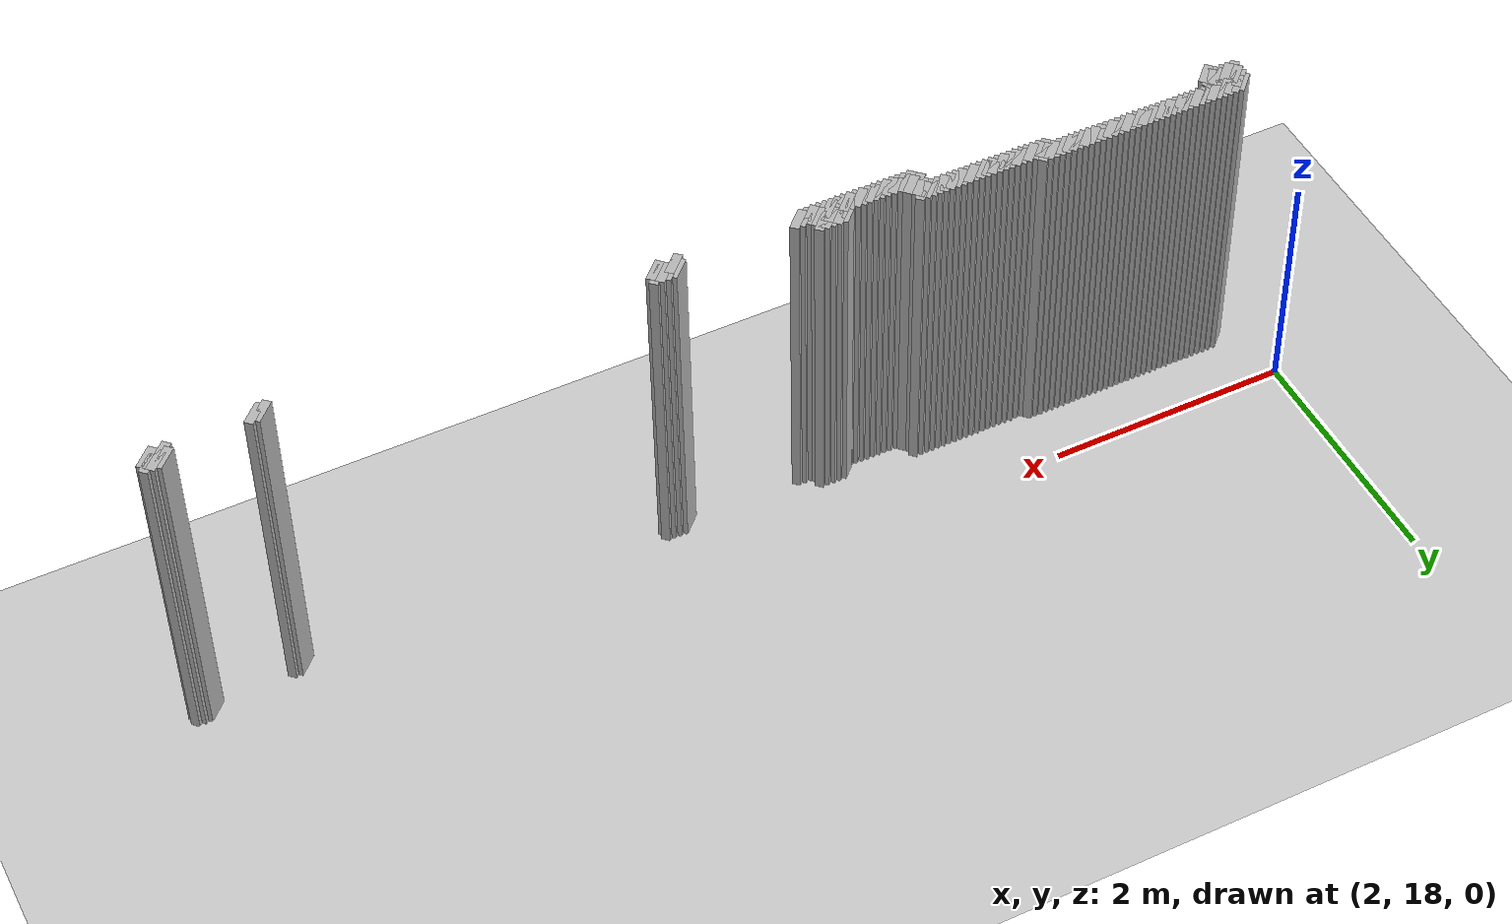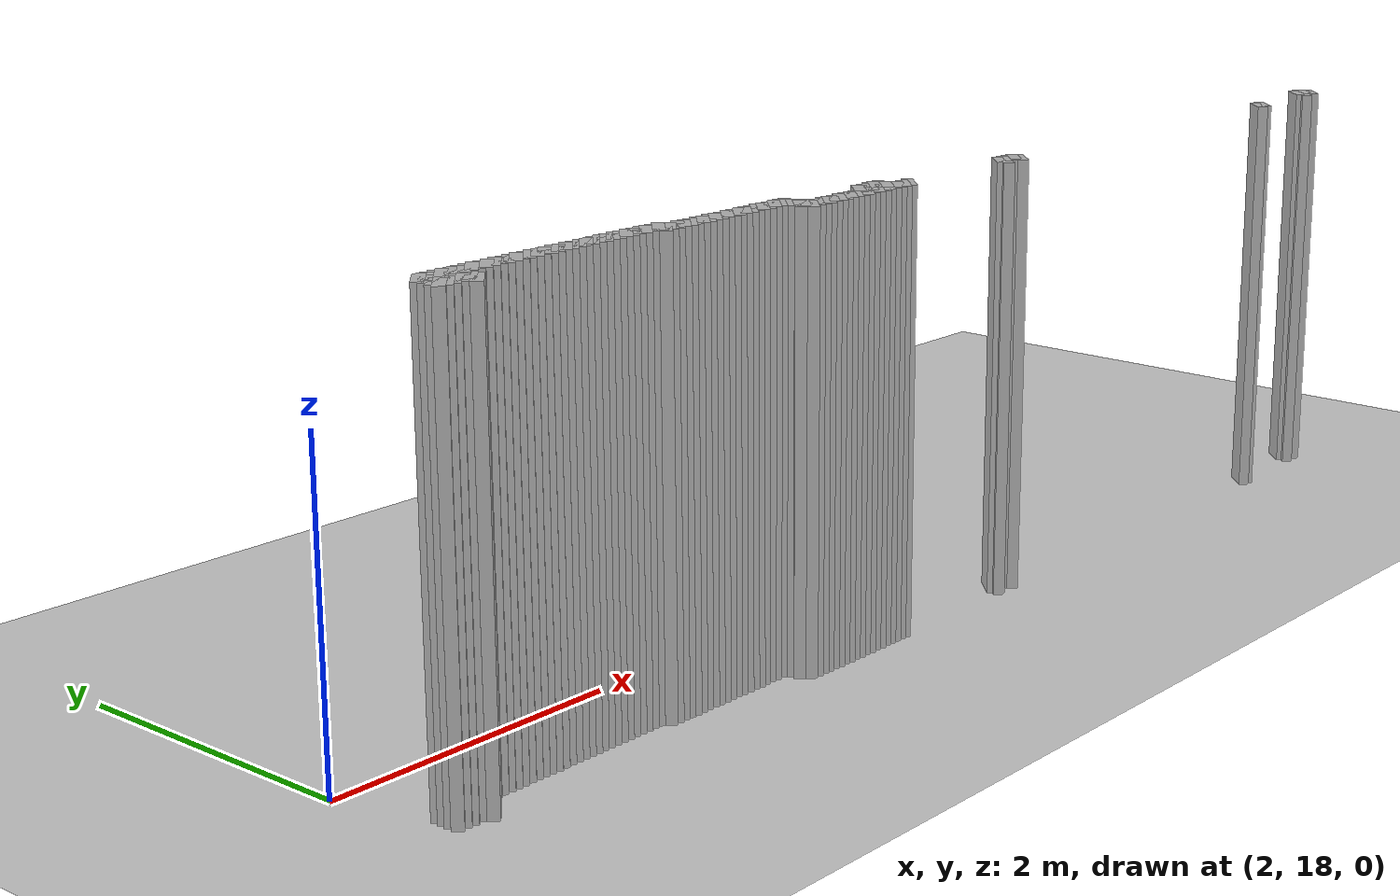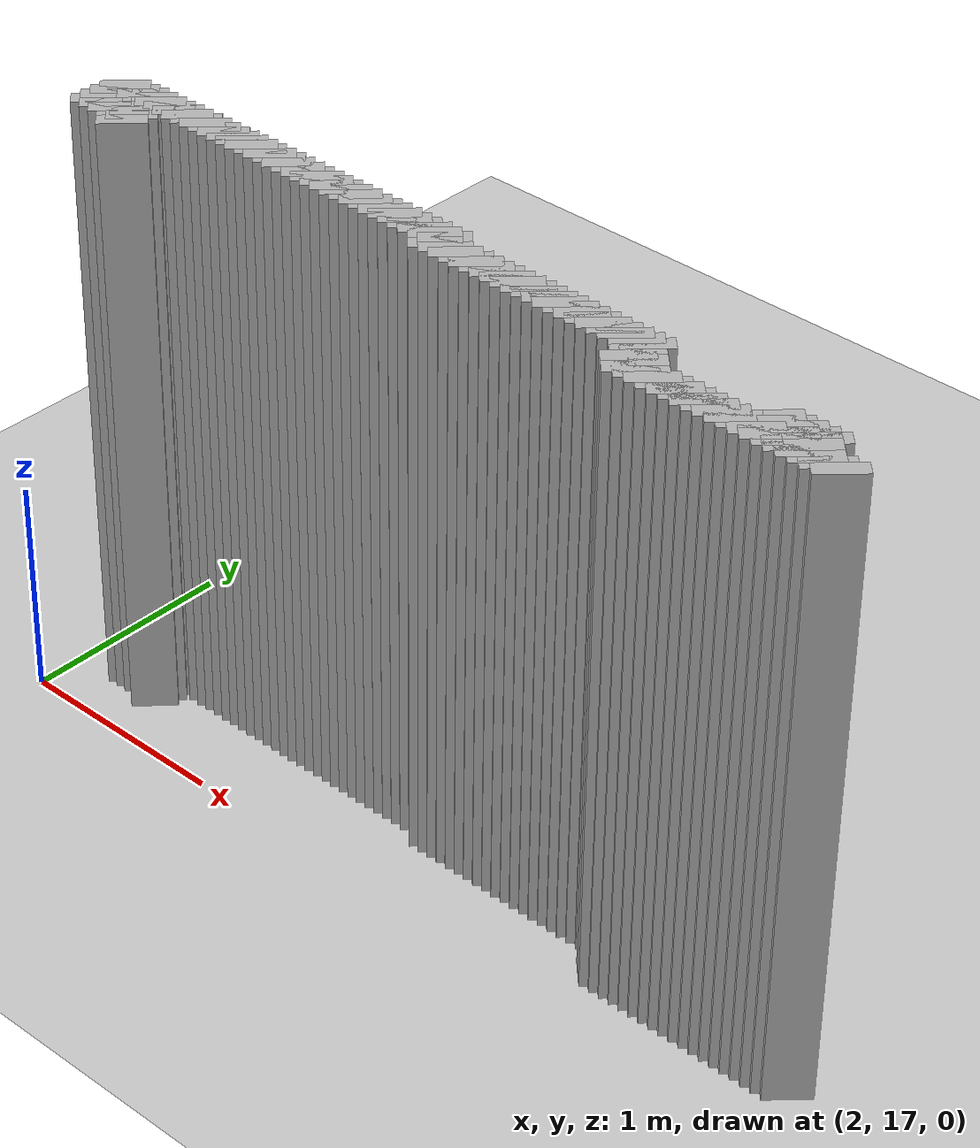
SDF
<sdf version="1.5">
 <world name="default">
  <include><uri>model://ground_plane</uri></include>
  <include><uri>model://sun</uri></include>
  <model name="grey_wall_1">
   <static>1</static>
   <link name="link">
    <pose>2.25 17.45  1.4 0 0 -0.7853981633974216</pose>
    <collision name="collision">
     <geometry><box><size>0.07071067811865261 .2  2.8</size></box></geometry>
    </collision>
    <visual name="visual">
     <cast_shadows>0</cast_shadows>
     <geometry><box><size>0.07071067811865261 .2  2.8</size></box></geometry>
    </visual>
   </link>
  </model>
  <model name="grey_wall_2">
   <static>1</static>
   <link name="link">
    <pose>2.3000000000000003 17.45  1.4 0 0 -0.7853981633974216</pose>
    <collision name="collision">
     <geometry><box><size>0.07071067811865261 .2  2.8</size></box></geometry>
    </collision>
    <visual name="visual">
     <cast_shadows>0</cast_shadows>
     <geometry><box><size>0.07071067811865261 .2  2.8</size></box></geometry>
    </visual>
   </link>
  </model>
  <model name="grey_wall_3">
   <static>1</static>
   <link name="link">
    <pose>2.35 17.45  1.4 0 0 -0.7853981633974216</pose>
    <collision name="collision">
     <geometry><box><size>0.07071067811865261 .2  2.8</size></box></geometry>
    </collision>
    <visual name="visual">
     <cast_shadows>0</cast_shadows>
     <geometry><box><size>0.07071067811865261 .2  2.8</size></box></geometry>
    </visual>
   </link>
  </model>
  <model name="grey_wall_4">
   <static>1</static>
   <link name="link">
    <pose>2.4000000000000004 17.45  1.4 0 0 -0.7853981633974216</pose>
    <collision name="collision">
     <geometry><box><size>0.07071067811865261 .2  2.8</size></box></geometry>
    </collision>
    <visual name="visual">
     <cast_shadows>0</cast_shadows>
     <geometry><box><size>0.07071067811865261 .2  2.8</size></box></geometry>
    </visual>
   </link>
  </model>
  <model name="grey_wall_5">
   <static>1</static>
   <link name="link">
    <pose>2.45 17.45  1.4 0 0 -0.7853981633974216</pose>
    <collision name="collision">
     <geometry><box><size>0.07071067811865261 .2  2.8</size></box></geometry>
    </collision>
    <visual name="visual">
     <cast_shadows>0</cast_shadows>
     <geometry><box><size>0.07071067811865261 .2  2.8</size></box></geometry>
    </visual>
   </link>
  </model>
  <model name="grey_wall_6">
   <static>1</static>
   <link name="link">
    <pose>2.5 17.45  1.4 0 0 -0.7853981633974216</pose>
    <collision name="collision">
     <geometry><box><size>0.07071067811865261 .2  2.8</size></box></geometry>
    </collision>
    <visual name="visual">
     <cast_shadows>0</cast_shadows>
     <geometry><box><size>0.07071067811865261 .2  2.8</size></box></geometry>
    </visual>
   </link>
  </model>
  <model name="grey_wall_7">
   <static>1</static>
   <link name="link">
    <pose>2.5500000000000003 17.45  1.4 0 0 -0.7853981633974216</pose>
    <collision name="collision">
     <geometry><box><size>0.07071067811865261 .2  2.8</size></box></geometry>
    </collision>
    <visual name="visual">
     <cast_shadows>0</cast_shadows>
     <geometry><box><size>0.07071067811865261 .2  2.8</size></box></geometry>
    </visual>
   </link>
  </model>
  <model name="grey_wall_8">
   <static>1</static>
   <link name="link">
    <pose>2.6 17.45  1.4 0 0 -0.7853981633974216</pose>
    <collision name="collision">
     <geometry><box><size>0.07071067811865261 .2  2.8</size></box></geometry>
    </collision>
    <visual name="visual">
     <cast_shadows>0</cast_shadows>
     <geometry><box><size>0.07071067811865261 .2  2.8</size></box></geometry>
    </visual>
   </link>
  </model>
  <model name="grey_wall_9">
   <static>1</static>
   <link name="link">
    <pose>2.6500000000000004 17.45  1.4 0 0 -0.7853981633974216</pose>
    <collision name="collision">
     <geometry><box><size>0.07071067811865261 .2  2.8</size></box></geometry>
    </collision>
    <visual name="visual">
     <cast_shadows>0</cast_shadows>
     <geometry><box><size>0.07071067811865261 .2  2.8</size></box></geometry>
    </visual>
   </link>
  </model>
  <model name="grey_wall_10">
   <static>1</static>
   <link name="link">
    <pose>2.7 17.45  1.4 0 0 -0.7853981633974216</pose>
    <collision name="collision">
     <geometry><box><size>0.07071067811865261 .2  2.8</size></box></geometry>
    </collision>
    <visual name="visual">
     <cast_shadows>0</cast_shadows>
     <geometry><box><size>0.07071067811865261 .2  2.8</size></box></geometry>
    </visual>
   </link>
  </model>
  <model name="grey_wall_11">
   <static>1</static>
   <link name="link">
    <pose>2.75 17.45  1.4 0 0 -0.7853981633974216</pose>
    <collision name="collision">
     <geometry><box><size>0.07071067811865261 .2  2.8</size></box></geometry>
    </collision>
    <visual name="visual">
     <cast_shadows>0</cast_shadows>
     <geometry><box><size>0.07071067811865261 .2  2.8</size></box></geometry>
    </visual>
   </link>
  </model>
  <model name="grey_wall_12">
   <static>1</static>
   <link name="link">
    <pose>2.8000000000000003 17.45  1.4 0 0 -0.7853981633974216</pose>
    <collision name="collision">
     <geometry><box><size>0.07071067811865261 .2  2.8</size></box></geometry>
    </collision>
    <visual name="visual">
     <cast_shadows>0</cast_shadows>
     <geometry><box><size>0.07071067811865261 .2  2.8</size></box></geometry>
    </visual>
   </link>
  </model>
  <model name="grey_wall_13">
   <static>1</static>
   <link name="link">
    <pose>2.85 17.45  1.4 0 0 -0.7853981633974216</pose>
    <collision name="collision">
     <geometry><box><size>0.07071067811865261 .2  2.8</size></box></geometry>
    </collision>
    <visual name="visual">
     <cast_shadows>0</cast_shadows>
     <geometry><box><size>0.07071067811865261 .2  2.8</size></box></geometry>
    </visual>
   </link>
  </model>
  <model name="grey_wall_14">
   <static>1</static>
   <link name="link">
    <pose>2.9000000000000004 17.45  1.4 0 0 -0.7853981633974216</pose>
    <collision name="collision">
     <geometry><box><size>0.07071067811865261 .2  2.8</size></box></geometry>
    </collision>
    <visual name="visual">
     <cast_shadows>0</cast_shadows>
     <geometry><box><size>0.07071067811865261 .2  2.8</size></box></geometry>
    </visual>
   </link>
  </model>
  <model name="grey_wall_15">
   <static>1</static>
   <link name="link">
    <pose>2.95 17.45  1.4 0 0 -0.7853981633974216</pose>
    <collision name="collision">
     <geometry><box><size>0.07071067811865261 .2  2.8</size></box></geometry>
    </collision>
    <visual name="visual">
     <cast_shadows>0</cast_shadows>
     <geometry><box><size>0.07071067811865261 .2  2.8</size></box></geometry>
    </visual>
   </link>
  </model>
  <model name="grey_wall_16">
   <static>1</static>
   <link name="link">
    <pose>3.0 17.45  1.4 0 0 -0.7853981633974216</pose>
    <collision name="collision">
     <geometry><box><size>0.07071067811865261 .2  2.8</size></box></geometry>
    </collision>
    <visual name="visual">
     <cast_shadows>0</cast_shadows>
     <geometry><box><size>0.07071067811865261 .2  2.8</size></box></geometry>
    </visual>
   </link>
  </model>
  <model name="grey_wall_17">
   <static>1</static>
   <link name="link">
    <pose>3.0500000000000003 17.45  1.4 0 0 -0.7853981633974216</pose>
    <collision name="collision">
     <geometry><box><size>0.07071067811865261 .2  2.8</size></box></geometry>
    </collision>
    <visual name="visual">
     <cast_shadows>0</cast_shadows>
     <geometry><box><size>0.07071067811865261 .2  2.8</size></box></geometry>
    </visual>
   </link>
  </model>
  <model name="grey_wall_18">
   <static>1</static>
   <link name="link">
    <pose>3.1 17.45  1.4 0 0 -0.7853981633974216</pose>
    <collision name="collision">
     <geometry><box><size>0.07071067811865261 .2  2.8</size></box></geometry>
    </collision>
    <visual name="visual">
     <cast_shadows>0</cast_shadows>
     <geometry><box><size>0.07071067811865261 .2  2.8</size></box></geometry>
    </visual>
   </link>
  </model>
  <model name="grey_wall_19">
   <static>1</static>
   <link name="link">
    <pose>3.1500000000000004 17.45  1.4 0 0 -0.7853981633974216</pose>
    <collision name="collision">
     <geometry><box><size>0.07071067811865261 .2  2.8</size></box></geometry>
    </collision>
    <visual name="visual">
     <cast_shadows>0</cast_shadows>
     <geometry><box><size>0.07071067811865261 .2  2.8</size></box></geometry>
    </visual>
   </link>
  </model>
  <model name="grey_wall_20">
   <static>1</static>
   <link name="link">
    <pose>3.2 17.45  1.4 0 0 -0.7853981633974216</pose>
    <collision name="collision">
     <geometry><box><size>0.07071067811865261 .2  2.8</size></box></geometry>
    </collision>
    <visual name="visual">
     <cast_shadows>0</cast_shadows>
     <geometry><box><size>0.07071067811865261 .2  2.8</size></box></geometry>
    </visual>
   </link>
  </model>
  <model name="grey_wall_21">
   <static>1</static>
   <link name="link">
    <pose>3.25 17.45  1.4 0 0 -0.7853981633974216</pose>
    <collision name="collision">
     <geometry><box><size>0.07071067811865261 .2  2.8</size></box></geometry>
    </collision>
    <visual name="visual">
     <cast_shadows>0</cast_shadows>
     <geometry><box><size>0.07071067811865261 .2  2.8</size></box></geometry>
    </visual>
   </link>
  </model>
  <model name="grey_wall_22">
   <static>1</static>
   <link name="link">
    <pose>3.3000000000000003 17.45  1.4 0 0 -0.7853981633974216</pose>
    <collision name="collision">
     <geometry><box><size>0.07071067811865261 .2  2.8</size></box></geometry>
    </collision>
    <visual name="visual">
     <cast_shadows>0</cast_shadows>
     <geometry><box><size>0.07071067811865261 .2  2.8</size></box></geometry>
    </visual>
   </link>
  </model>
  <model name="grey_wall_23">
   <static>1</static>
   <link name="link">
    <pose>3.35 17.45  1.4 0 0 -0.7853981633974216</pose>
    <collision name="collision">
     <geometry><box><size>0.07071067811865261 .2  2.8</size></box></geometry>
    </collision>
    <visual name="visual">
     <cast_shadows>0</cast_shadows>
     <geometry><box><size>0.07071067811865261 .2  2.8</size></box></geometry>
    </visual>
   </link>
  </model>
  <model name="grey_wall_24">
   <static>1</static>
   <link name="link">
    <pose>3.4000000000000004 17.45  1.4 0 0 -0.7853981633974216</pose>
    <collision name="collision">
     <geometry><box><size>0.07071067811865261 .2  2.8</size></box></geometry>
    </collision>
    <visual name="visual">
     <cast_shadows>0</cast_shadows>
     <geometry><box><size>0.07071067811865261 .2  2.8</size></box></geometry>
    </visual>
   </link>
  </model>
  <model name="grey_wall_25">
   <static>1</static>
   <link name="link">
    <pose>3.45 17.45  1.4 0 0 -0.7853981633974216</pose>
    <collision name="collision">
     <geometry><box><size>0.07071067811865261 .2  2.8</size></box></geometry>
    </collision>
    <visual name="visual">
     <cast_shadows>0</cast_shadows>
     <geometry><box><size>0.07071067811865261 .2  2.8</size></box></geometry>
    </visual>
   </link>
  </model>
  <model name="grey_wall_26">
   <static>1</static>
   <link name="link">
    <pose>3.5 17.45  1.4 0 0 -0.7853981633974216</pose>
    <collision name="collision">
     <geometry><box><size>0.07071067811865261 .2  2.8</size></box></geometry>
    </collision>
    <visual name="visual">
     <cast_shadows>0</cast_shadows>
     <geometry><box><size>0.07071067811865261 .2  2.8</size></box></geometry>
    </visual>
   </link>
  </model>
  <model name="grey_wall_27">
   <static>1</static>
   <link name="link">
    <pose>3.5500000000000003 17.45  1.4 0 0 -0.7853981633974216</pose>
    <collision name="collision">
     <geometry><box><size>0.07071067811865261 .2  2.8</size></box></geometry>
    </collision>
    <visual name="visual">
     <cast_shadows>0</cast_shadows>
     <geometry><box><size>0.07071067811865261 .2  2.8</size></box></geometry>
    </visual>
   </link>
  </model>
  <model name="grey_wall_28">
   <static>1</static>
   <link name="link">
    <pose>3.6 17.45  1.4 0 0 -0.7853981633974216</pose>
    <collision name="collision">
     <geometry><box><size>0.07071067811865261 .2  2.8</size></box></geometry>
    </collision>
    <visual name="visual">
     <cast_shadows>0</cast_shadows>
     <geometry><box><size>0.07071067811865261 .2  2.8</size></box></geometry>
    </visual>
   </link>
  </model>
  <model name="grey_wall_29">
   <static>1</static>
   <link name="link">
    <pose>3.6500000000000004 17.45  1.4 0 0 -0.7853981633974216</pose>
    <collision name="collision">
     <geometry><box><size>0.07071067811865261 .2  2.8</size></box></geometry>
    </collision>
    <visual name="visual">
     <cast_shadows>0</cast_shadows>
     <geometry><box><size>0.07071067811865261 .2  2.8</size></box></geometry>
    </visual>
   </link>
  </model>
  <model name="grey_wall_30">
   <static>1</static>
   <link name="link">
    <pose>3.7 17.45  1.4 0 0 -0.7853981633974216</pose>
    <collision name="collision">
     <geometry><box><size>0.07071067811865261 .2  2.8</size></box></geometry>
    </collision>
    <visual name="visual">
     <cast_shadows>0</cast_shadows>
     <geometry><box><size>0.07071067811865261 .2  2.8</size></box></geometry>
    </visual>
   </link>
  </model>
  <model name="grey_wall_31">
   <static>1</static>
   <link name="link">
    <pose>3.75 17.45  1.4 0 0 -0.7853981633974216</pose>
    <collision name="collision">
     <geometry><box><size>0.07071067811865261 .2  2.8</size></box></geometry>
    </collision>
    <visual name="visual">
     <cast_shadows>0</cast_shadows>
     <geometry><box><size>0.07071067811865261 .2  2.8</size></box></geometry>
    </visual>
   </link>
  </model>
  <model name="grey_wall_32">
   <static>1</static>
   <link name="link">
    <pose>3.8000000000000003 17.45  1.4 0 0 -0.7853981633974216</pose>
    <collision name="collision">
     <geometry><box><size>0.07071067811865261 .2  2.8</size></box></geometry>
    </collision>
    <visual name="visual">
     <cast_shadows>0</cast_shadows>
     <geometry><box><size>0.07071067811865261 .2  2.8</size></box></geometry>
    </visual>
   </link>
  </model>
  <model name="grey_wall_33">
   <static>1</static>
   <link name="link">
    <pose>3.85 17.45  1.4 0 0 -0.7853981633974216</pose>
    <collision name="collision">
     <geometry><box><size>0.07071067811865261 .2  2.8</size></box></geometry>
    </collision>
    <visual name="visual">
     <cast_shadows>0</cast_shadows>
     <geometry><box><size>0.07071067811865261 .2  2.8</size></box></geometry>
    </visual>
   </link>
  </model>
  <model name="grey_wall_34">
   <static>1</static>
   <link name="link">
    <pose>3.9000000000000004 17.45  1.4 0 0 -0.7853981633974216</pose>
    <collision name="collision">
     <geometry><box><size>0.07071067811865261 .2  2.8</size></box></geometry>
    </collision>
    <visual name="visual">
     <cast_shadows>0</cast_shadows>
     <geometry><box><size>0.07071067811865261 .2  2.8</size></box></geometry>
    </visual>
   </link>
  </model>
  <model name="grey_wall_35">
   <static>1</static>
   <link name="link">
    <pose>3.95 17.45  1.4 0 0 -0.7853981633974216</pose>
    <collision name="collision">
     <geometry><box><size>0.07071067811865261 .2  2.8</size></box></geometry>
    </collision>
    <visual name="visual">
     <cast_shadows>0</cast_shadows>
     <geometry><box><size>0.07071067811865261 .2  2.8</size></box></geometry>
    </visual>
   </link>
  </model>
  <model name="grey_wall_36">
   <static>1</static>
   <link name="link">
    <pose>2.25 17.400000000000002  1.4 0 0 -0.7853981633974216</pose>
    <collision name="collision">
     <geometry><box><size>0.07071067811865261 .2  2.8</size></box></geometry>
    </collision>
    <visual name="visual">
     <cast_shadows>0</cast_shadows>
     <geometry><box><size>0.07071067811865261 .2  2.8</size></box></geometry>
    </visual>
   </link>
  </model>
  <model name="grey_wall_37">
   <static>1</static>
   <link name="link">
    <pose>3.95 17.400000000000002  1.4 0 0 -0.7853981633974216</pose>
    <collision name="collision">
     <geometry><box><size>0.07071067811865261 .2  2.8</size></box></geometry>
    </collision>
    <visual name="visual">
     <cast_shadows>0</cast_shadows>
     <geometry><box><size>0.07071067811865261 .2  2.8</size></box></geometry>
    </visual>
   </link>
  </model>
  <model name="grey_wall_38">
   <static>1</static>
   <link name="link">
    <pose>4.0 17.400000000000002  1.4 0 0 -0.7853981633974172</pose>
    <collision name="collision">
     <geometry><box><size>0.07071067811865293 .2  2.8</size></box></geometry>
    </collision>
    <visual name="visual">
     <cast_shadows>0</cast_shadows>
     <geometry><box><size>0.07071067811865293 .2  2.8</size></box></geometry>
    </visual>
   </link>
  </model>
  <model name="grey_wall_39">
   <static>1</static>
   <link name="link">
    <pose>4.05 17.400000000000002  1.4 0 0 -0.7853981633974128</pose>
    <collision name="collision">
     <geometry><box><size>0.07071067811865325 .2  2.8</size></box></geometry>
    </collision>
    <visual name="visual">
     <cast_shadows>0</cast_shadows>
     <geometry><box><size>0.07071067811865325 .2  2.8</size></box></geometry>
    </visual>
   </link>
  </model>
  <model name="grey_wall_40">
   <static>1</static>
   <link name="link">
    <pose>4.1000000000000005 17.400000000000002  1.4 0 0 -0.7853981633974128</pose>
    <collision name="collision">
     <geometry><box><size>0.07071067811865325 .2  2.8</size></box></geometry>
    </collision>
    <visual name="visual">
     <cast_shadows>0</cast_shadows>
     <geometry><box><size>0.07071067811865325 .2  2.8</size></box></geometry>
    </visual>
   </link>
  </model>
  <model name="grey_wall_41">
   <static>1</static>
   <link name="link">
    <pose>4.15 17.400000000000002  1.4 0 0 -0.7853981633974128</pose>
    <collision name="collision">
     <geometry><box><size>0.07071067811865325 .2  2.8</size></box></geometry>
    </collision>
    <visual name="visual">
     <cast_shadows>0</cast_shadows>
     <geometry><box><size>0.07071067811865325 .2  2.8</size></box></geometry>
    </visual>
   </link>
  </model>
  <model name="grey_wall_42">
   <static>1</static>
   <link name="link">
    <pose>4.2 17.400000000000002  1.4 0 0 -0.7853981633974128</pose>
    <collision name="collision">
     <geometry><box><size>0.07071067811865325 .2  2.8</size></box></geometry>
    </collision>
    <visual name="visual">
     <cast_shadows>0</cast_shadows>
     <geometry><box><size>0.07071067811865325 .2  2.8</size></box></geometry>
    </visual>
   </link>
  </model>
  <model name="grey_wall_43">
   <static>1</static>
   <link name="link">
    <pose>4.25 17.400000000000002  1.4 0 0 -0.7853981633974128</pose>
    <collision name="collision">
     <geometry><box><size>0.07071067811865325 .2  2.8</size></box></geometry>
    </collision>
    <visual name="visual">
     <cast_shadows>0</cast_shadows>
     <geometry><box><size>0.07071067811865325 .2  2.8</size></box></geometry>
    </visual>
   </link>
  </model>
  <model name="grey_wall_44">
   <static>1</static>
   <link name="link">
    <pose>4.3 17.400000000000002  1.4 0 0 -0.7853981633974128</pose>
    <collision name="collision">
     <geometry><box><size>0.07071067811865325 .2  2.8</size></box></geometry>
    </collision>
    <visual name="visual">
     <cast_shadows>0</cast_shadows>
     <geometry><box><size>0.07071067811865325 .2  2.8</size></box></geometry>
    </visual>
   </link>
  </model>
  <model name="grey_wall_45">
   <static>1</static>
   <link name="link">
    <pose>4.3500000000000005 17.400000000000002  1.4 0 0 -0.7853981633974128</pose>
    <collision name="collision">
     <geometry><box><size>0.07071067811865325 .2  2.8</size></box></geometry>
    </collision>
    <visual name="visual">
     <cast_shadows>0</cast_shadows>
     <geometry><box><size>0.07071067811865325 .2  2.8</size></box></geometry>
    </visual>
   </link>
  </model>
  <model name="grey_wall_46">
   <static>1</static>
   <link name="link">
    <pose>4.4 17.400000000000002  1.4 0 0 -0.7853981633974128</pose>
    <collision name="collision">
     <geometry><box><size>0.07071067811865325 .2  2.8</size></box></geometry>
    </collision>
    <visual name="visual">
     <cast_shadows>0</cast_shadows>
     <geometry><box><size>0.07071067811865325 .2  2.8</size></box></geometry>
    </visual>
   </link>
  </model>
  <model name="grey_wall_47">
   <static>1</static>
   <link name="link">
    <pose>4.45 17.400000000000002  1.4 0 0 -0.7853981633974128</pose>
    <collision name="collision">
     <geometry><box><size>0.07071067811865325 .2  2.8</size></box></geometry>
    </collision>
    <visual name="visual">
     <cast_shadows>0</cast_shadows>
     <geometry><box><size>0.07071067811865325 .2  2.8</size></box></geometry>
    </visual>
   </link>
  </model>
  <model name="grey_wall_48">
   <static>1</static>
   <link name="link">
    <pose>4.5 17.400000000000002  1.4 0 0 -0.7853981633974128</pose>
    <collision name="collision">
     <geometry><box><size>0.07071067811865325 .2  2.8</size></box></geometry>
    </collision>
    <visual name="visual">
     <cast_shadows>0</cast_shadows>
     <geometry><box><size>0.07071067811865325 .2  2.8</size></box></geometry>
    </visual>
   </link>
  </model>
  <model name="grey_wall_49">
   <static>1</static>
   <link name="link">
    <pose>4.55 17.400000000000002  1.4 0 0 -0.7853981633974128</pose>
    <collision name="collision">
     <geometry><box><size>0.07071067811865325 .2  2.8</size></box></geometry>
    </collision>
    <visual name="visual">
     <cast_shadows>0</cast_shadows>
     <geometry><box><size>0.07071067811865325 .2  2.8</size></box></geometry>
    </visual>
   </link>
  </model>
  <model name="grey_wall_50">
   <static>1</static>
   <link name="link">
    <pose>4.6000000000000005 17.400000000000002  1.4 0 0 -0.7853981633974128</pose>
    <collision name="collision">
     <geometry><box><size>0.07071067811865325 .2  2.8</size></box></geometry>
    </collision>
    <visual name="visual">
     <cast_shadows>0</cast_shadows>
     <geometry><box><size>0.07071067811865325 .2  2.8</size></box></geometry>
    </visual>
   </link>
  </model>
  <model name="grey_wall_51">
   <static>1</static>
   <link name="link">
    <pose>4.65 17.400000000000002  1.4 0 0 -0.7853981633974128</pose>
    <collision name="collision">
     <geometry><box><size>0.07071067811865325 .2  2.8</size></box></geometry>
    </collision>
    <visual name="visual">
     <cast_shadows>0</cast_shadows>
     <geometry><box><size>0.07071067811865325 .2  2.8</size></box></geometry>
    </visual>
   </link>
  </model>
  <model name="grey_wall_52">
   <static>1</static>
   <link name="link">
    <pose>4.7 17.400000000000002  1.4 0 0 -0.7853981633974128</pose>
    <collision name="collision">
     <geometry><box><size>0.07071067811865325 .2  2.8</size></box></geometry>
    </collision>
    <visual name="visual">
     <cast_shadows>0</cast_shadows>
     <geometry><box><size>0.07071067811865325 .2  2.8</size></box></geometry>
    </visual>
   </link>
  </model>
  <model name="grey_wall_53">
   <static>1</static>
   <link name="link">
    <pose>4.75 17.400000000000002  1.4 0 0 -0.7853981633974128</pose>
    <collision name="collision">
     <geometry><box><size>0.07071067811865325 .2  2.8</size></box></geometry>
    </collision>
    <visual name="visual">
     <cast_shadows>0</cast_shadows>
     <geometry><box><size>0.07071067811865325 .2  2.8</size></box></geometry>
    </visual>
   </link>
  </model>
  <model name="grey_wall_54">
   <static>1</static>
   <link name="link">
    <pose>4.800000000000001 17.400000000000002  1.4 0 0 -0.7853981633974128</pose>
    <collision name="collision">
     <geometry><box><size>0.07071067811865325 .2  2.8</size></box></geometry>
    </collision>
    <visual name="visual">
     <cast_shadows>0</cast_shadows>
     <geometry><box><size>0.07071067811865325 .2  2.8</size></box></geometry>
    </visual>
   </link>
  </model>
  <model name="grey_wall_55">
   <static>1</static>
   <link name="link">
    <pose>4.8500000000000005 17.400000000000002  1.4 0 0 -0.7853981633974128</pose>
    <collision name="collision">
     <geometry><box><size>0.07071067811865325 .2  2.8</size></box></geometry>
    </collision>
    <visual name="visual">
     <cast_shadows>0</cast_shadows>
     <geometry><box><size>0.07071067811865325 .2  2.8</size></box></geometry>
    </visual>
   </link>
  </model>
  <model name="grey_wall_56">
   <static>1</static>
   <link name="link">
    <pose>4.9 17.400000000000002  1.4 0 0 -0.7853981633974128</pose>
    <collision name="collision">
     <geometry><box><size>0.07071067811865325 .2  2.8</size></box></geometry>
    </collision>
    <visual name="visual">
     <cast_shadows>0</cast_shadows>
     <geometry><box><size>0.07071067811865325 .2  2.8</size></box></geometry>
    </visual>
   </link>
  </model>
  <model name="grey_wall_57">
   <static>1</static>
   <link name="link">
    <pose>4.95 17.400000000000002  1.4 0 0 -0.7853981633974128</pose>
    <collision name="collision">
     <geometry><box><size>0.07071067811865325 .2  2.8</size></box></geometry>
    </collision>
    <visual name="visual">
     <cast_shadows>0</cast_shadows>
     <geometry><box><size>0.07071067811865325 .2  2.8</size></box></geometry>
    </visual>
   </link>
  </model>
  <model name="grey_wall_58">
   <static>1</static>
   <link name="link">
    <pose>2.25 17.35  1.4 0 0 -0.7853981633974216</pose>
    <collision name="collision">
     <geometry><box><size>0.07071067811865261 .2  2.8</size></box></geometry>
    </collision>
    <visual name="visual">
     <cast_shadows>0</cast_shadows>
     <geometry><box><size>0.07071067811865261 .2  2.8</size></box></geometry>
    </visual>
   </link>
  </model>
  <model name="grey_wall_59">
   <static>1</static>
   <link name="link">
    <pose>4.95 17.35  1.4 0 0 -0.7853981633974128</pose>
    <collision name="collision">
     <geometry><box><size>0.07071067811865325 .2  2.8</size></box></geometry>
    </collision>
    <visual name="visual">
     <cast_shadows>0</cast_shadows>
     <geometry><box><size>0.07071067811865325 .2  2.8</size></box></geometry>
    </visual>
   </link>
  </model>
  <model name="grey_wall_60">
   <static>1</static>
   <link name="link">
    <pose>5.550000000000001 17.35  1.4 0 0 -0.7853981633974128</pose>
    <collision name="collision">
     <geometry><box><size>0.07071067811865325 .2  2.8</size></box></geometry>
    </collision>
    <visual name="visual">
     <cast_shadows>0</cast_shadows>
     <geometry><box><size>0.07071067811865325 .2  2.8</size></box></geometry>
    </visual>
   </link>
  </model>
  <model name="grey_wall_61">
   <static>1</static>
   <link name="link">
    <pose>5.6000000000000005 17.35  1.4 0 0 -0.7853981633974128</pose>
    <collision name="collision">
     <geometry><box><size>0.07071067811865325 .2  2.8</size></box></geometry>
    </collision>
    <visual name="visual">
     <cast_shadows>0</cast_shadows>
     <geometry><box><size>0.07071067811865325 .2  2.8</size></box></geometry>
    </visual>
   </link>
  </model>
  <model name="grey_wall_62">
   <static>1</static>
   <link name="link">
    <pose>5.65 17.35  1.4 0 0 -0.7853981633974128</pose>
    <collision name="collision">
     <geometry><box><size>0.07071067811865325 .2  2.8</size></box></geometry>
    </collision>
    <visual name="visual">
     <cast_shadows>0</cast_shadows>
     <geometry><box><size>0.07071067811865325 .2  2.8</size></box></geometry>
    </visual>
   </link>
  </model>
  <model name="grey_wall_63">
   <static>1</static>
   <link name="link">
    <pose>5.7 17.35  1.4 0 0 -0.7853981633974128</pose>
    <collision name="collision">
     <geometry><box><size>0.07071067811865325 .2  2.8</size></box></geometry>
    </collision>
    <visual name="visual">
     <cast_shadows>0</cast_shadows>
     <geometry><box><size>0.07071067811865325 .2  2.8</size></box></geometry>
    </visual>
   </link>
  </model>
  <model name="grey_wall_64">
   <static>1</static>
   <link name="link">
    <pose>5.75 17.35  1.4 0 0 -0.7853981633974128</pose>
    <collision name="collision">
     <geometry><box><size>0.07071067811865325 .2  2.8</size></box></geometry>
    </collision>
    <visual name="visual">
     <cast_shadows>0</cast_shadows>
     <geometry><box><size>0.07071067811865325 .2  2.8</size></box></geometry>
    </visual>
   </link>
  </model>
  <model name="grey_wall_65">
   <static>1</static>
   <link name="link">
    <pose>10.8 17.35  1.4 0 0 -0.7853981633974128</pose>
    <collision name="collision">
     <geometry><box><size>0.07071067811865325 .2  2.8</size></box></geometry>
    </collision>
    <visual name="visual">
     <cast_shadows>0</cast_shadows>
     <geometry><box><size>0.07071067811865325 .2  2.8</size></box></geometry>
    </visual>
   </link>
  </model>
  <model name="grey_wall_66">
   <static>1</static>
   <link name="link">
    <pose>10.850000000000001 17.35  1.4 0 0 -0.7853981633974128</pose>
    <collision name="collision">
     <geometry><box><size>0.07071067811865325 .2  2.8</size></box></geometry>
    </collision>
    <visual name="visual">
     <cast_shadows>0</cast_shadows>
     <geometry><box><size>0.07071067811865325 .2  2.8</size></box></geometry>
    </visual>
   </link>
  </model>
  <model name="grey_wall_67">
   <static>1</static>
   <link name="link">
    <pose>10.9 17.35  1.4 0 0 -0.7853981633974128</pose>
    <collision name="collision">
     <geometry><box><size>0.07071067811865325 .2  2.8</size></box></geometry>
    </collision>
    <visual name="visual">
     <cast_shadows>0</cast_shadows>
     <geometry><box><size>0.07071067811865325 .2  2.8</size></box></geometry>
    </visual>
   </link>
  </model>
  <model name="grey_wall_68">
   <static>1</static>
   <link name="link">
    <pose>2.25 17.3  1.4 0 0 -0.7853981633974216</pose>
    <collision name="collision">
     <geometry><box><size>0.07071067811865261 .2  2.8</size></box></geometry>
    </collision>
    <visual name="visual">
     <cast_shadows>0</cast_shadows>
     <geometry><box><size>0.07071067811865261 .2  2.8</size></box></geometry>
    </visual>
   </link>
  </model>
  <model name="grey_wall_69">
   <static>1</static>
   <link name="link">
    <pose>2.3000000000000003 17.3  1.4 0 0 -0.7853981633974216</pose>
    <collision name="collision">
     <geometry><box><size>0.07071067811865261 .2  2.8</size></box></geometry>
    </collision>
    <visual name="visual">
     <cast_shadows>0</cast_shadows>
     <geometry><box><size>0.07071067811865261 .2  2.8</size></box></geometry>
    </visual>
   </link>
  </model>
  <model name="grey_wall_70">
   <static>1</static>
   <link name="link">
    <pose>2.35 17.3  1.4 0 0 -0.7853981633974216</pose>
    <collision name="collision">
     <geometry><box><size>0.07071067811865261 .2  2.8</size></box></geometry>
    </collision>
    <visual name="visual">
     <cast_shadows>0</cast_shadows>
     <geometry><box><size>0.07071067811865261 .2  2.8</size></box></geometry>
    </visual>
   </link>
  </model>
  <model name="grey_wall_71">
   <static>1</static>
   <link name="link">
    <pose>2.4000000000000004 17.3  1.4 0 0 -0.7853981633974216</pose>
    <collision name="collision">
     <geometry><box><size>0.07071067811865261 .2  2.8</size></box></geometry>
    </collision>
    <visual name="visual">
     <cast_shadows>0</cast_shadows>
     <geometry><box><size>0.07071067811865261 .2  2.8</size></box></geometry>
    </visual>
   </link>
  </model>
  <model name="grey_wall_72">
   <static>1</static>
   <link name="link">
    <pose>2.45 17.3  1.4 0 0 -0.7853981633974216</pose>
    <collision name="collision">
     <geometry><box><size>0.07071067811865261 .2  2.8</size></box></geometry>
    </collision>
    <visual name="visual">
     <cast_shadows>0</cast_shadows>
     <geometry><box><size>0.07071067811865261 .2  2.8</size></box></geometry>
    </visual>
   </link>
  </model>
  <model name="grey_wall_73">
   <static>1</static>
   <link name="link">
    <pose>4.95 17.3  1.4 0 0 -0.7853981633974128</pose>
    <collision name="collision">
     <geometry><box><size>0.07071067811865325 .2  2.8</size></box></geometry>
    </collision>
    <visual name="visual">
     <cast_shadows>0</cast_shadows>
     <geometry><box><size>0.07071067811865325 .2  2.8</size></box></geometry>
    </visual>
   </link>
  </model>
  <model name="grey_wall_74">
   <static>1</static>
   <link name="link">
    <pose>5.0 17.3  1.4 0 0 -0.7853981633974128</pose>
    <collision name="collision">
     <geometry><box><size>0.07071067811865325 .2  2.8</size></box></geometry>
    </collision>
    <visual name="visual">
     <cast_shadows>0</cast_shadows>
     <geometry><box><size>0.07071067811865325 .2  2.8</size></box></geometry>
    </visual>
   </link>
  </model>
  <model name="grey_wall_75">
   <static>1</static>
   <link name="link">
    <pose>5.550000000000001 17.3  1.4 0 0 -0.7853981633974128</pose>
    <collision name="collision">
     <geometry><box><size>0.07071067811865325 .2  2.8</size></box></geometry>
    </collision>
    <visual name="visual">
     <cast_shadows>0</cast_shadows>
     <geometry><box><size>0.07071067811865325 .2  2.8</size></box></geometry>
    </visual>
   </link>
  </model>
  <model name="grey_wall_76">
   <static>1</static>
   <link name="link">
    <pose>5.65 17.3  1.4 0 0 -0.7853981633974128</pose>
    <collision name="collision">
     <geometry><box><size>0.07071067811865325 .2  2.8</size></box></geometry>
    </collision>
    <visual name="visual">
     <cast_shadows>0</cast_shadows>
     <geometry><box><size>0.07071067811865325 .2  2.8</size></box></geometry>
    </visual>
   </link>
  </model>
  <model name="grey_wall_77">
   <static>1</static>
   <link name="link">
    <pose>5.75 17.3  1.4 0 0 -0.7853981633974128</pose>
    <collision name="collision">
     <geometry><box><size>0.07071067811865325 .2  2.8</size></box></geometry>
    </collision>
    <visual name="visual">
     <cast_shadows>0</cast_shadows>
     <geometry><box><size>0.07071067811865325 .2  2.8</size></box></geometry>
    </visual>
   </link>
  </model>
  <model name="grey_wall_78">
   <static>1</static>
   <link name="link">
    <pose>6.9 17.3  1.4 0 0 -0.7853981633974128</pose>
    <collision name="collision">
     <geometry><box><size>0.07071067811865325 .2  2.8</size></box></geometry>
    </collision>
    <visual name="visual">
     <cast_shadows>0</cast_shadows>
     <geometry><box><size>0.07071067811865325 .2  2.8</size></box></geometry>
    </visual>
   </link>
  </model>
  <model name="grey_wall_79">
   <static>1</static>
   <link name="link">
    <pose>6.95 17.3  1.4 0 0 -0.7853981633974128</pose>
    <collision name="collision">
     <geometry><box><size>0.07071067811865325 .2  2.8</size></box></geometry>
    </collision>
    <visual name="visual">
     <cast_shadows>0</cast_shadows>
     <geometry><box><size>0.07071067811865325 .2  2.8</size></box></geometry>
    </visual>
   </link>
  </model>
  <model name="grey_wall_80">
   <static>1</static>
   <link name="link">
    <pose>7.0 17.3  1.4 0 0 -0.7853981633974128</pose>
    <collision name="collision">
     <geometry><box><size>0.07071067811865325 .2  2.8</size></box></geometry>
    </collision>
    <visual name="visual">
     <cast_shadows>0</cast_shadows>
     <geometry><box><size>0.07071067811865325 .2  2.8</size></box></geometry>
    </visual>
   </link>
  </model>
  <model name="grey_wall_81">
   <static>1</static>
   <link name="link">
    <pose>7.050000000000001 17.3  1.4 0 0 -0.7853981633974128</pose>
    <collision name="collision">
     <geometry><box><size>0.07071067811865325 .2  2.8</size></box></geometry>
    </collision>
    <visual name="visual">
     <cast_shadows>0</cast_shadows>
     <geometry><box><size>0.07071067811865325 .2  2.8</size></box></geometry>
    </visual>
   </link>
  </model>
  <model name="grey_wall_82">
   <static>1</static>
   <link name="link">
    <pose>10.8 17.3  1.4 0 0 -0.7853981633974128</pose>
    <collision name="collision">
     <geometry><box><size>0.07071067811865325 .2  2.8</size></box></geometry>
    </collision>
    <visual name="visual">
     <cast_shadows>0</cast_shadows>
     <geometry><box><size>0.07071067811865325 .2  2.8</size></box></geometry>
    </visual>
   </link>
  </model>
  <model name="grey_wall_83">
   <static>1</static>
   <link name="link">
    <pose>10.9 17.3  1.4 0 0 -0.7853981633974128</pose>
    <collision name="collision">
     <geometry><box><size>0.07071067811865325 .2  2.8</size></box></geometry>
    </collision>
    <visual name="visual">
     <cast_shadows>0</cast_shadows>
     <geometry><box><size>0.07071067811865325 .2  2.8</size></box></geometry>
    </visual>
   </link>
  </model>
  <model name="grey_wall_84">
   <static>1</static>
   <link name="link">
    <pose>2.45 17.25  1.4 0 0 -0.7853981633974216</pose>
    <collision name="collision">
     <geometry><box><size>0.07071067811865261 .2  2.8</size></box></geometry>
    </collision>
    <visual name="visual">
     <cast_shadows>0</cast_shadows>
     <geometry><box><size>0.07071067811865261 .2  2.8</size></box></geometry>
    </visual>
   </link>
  </model>
  <model name="grey_wall_85">
   <static>1</static>
   <link name="link">
    <pose>5.0 17.25  1.4 0 0 -0.7853981633974128</pose>
    <collision name="collision">
     <geometry><box><size>0.07071067811865325 .2  2.8</size></box></geometry>
    </collision>
    <visual name="visual">
     <cast_shadows>0</cast_shadows>
     <geometry><box><size>0.07071067811865325 .2  2.8</size></box></geometry>
    </visual>
   </link>
  </model>
  <model name="grey_wall_86">
   <static>1</static>
   <link name="link">
    <pose>5.050000000000001 17.25  1.4 0 0 -0.7853981633974128</pose>
    <collision name="collision">
     <geometry><box><size>0.07071067811865325 .2  2.8</size></box></geometry>
    </collision>
    <visual name="visual">
     <cast_shadows>0</cast_shadows>
     <geometry><box><size>0.07071067811865325 .2  2.8</size></box></geometry>
    </visual>
   </link>
  </model>
  <model name="grey_wall_87">
   <static>1</static>
   <link name="link">
    <pose>5.1000000000000005 17.25  1.4 0 0 -0.7853981633974128</pose>
    <collision name="collision">
     <geometry><box><size>0.07071067811865325 .2  2.8</size></box></geometry>
    </collision>
    <visual name="visual">
     <cast_shadows>0</cast_shadows>
     <geometry><box><size>0.07071067811865325 .2  2.8</size></box></geometry>
    </visual>
   </link>
  </model>
  <model name="grey_wall_88">
   <static>1</static>
   <link name="link">
    <pose>5.15 17.25  1.4 0 0 -0.7853981633974128</pose>
    <collision name="collision">
     <geometry><box><size>0.07071067811865325 .2  2.8</size></box></geometry>
    </collision>
    <visual name="visual">
     <cast_shadows>0</cast_shadows>
     <geometry><box><size>0.07071067811865325 .2  2.8</size></box></geometry>
    </visual>
   </link>
  </model>
  <model name="grey_wall_89">
   <static>1</static>
   <link name="link">
    <pose>5.2 17.25  1.4 0 0 -0.7853981633974128</pose>
    <collision name="collision">
     <geometry><box><size>0.07071067811865325 .2  2.8</size></box></geometry>
    </collision>
    <visual name="visual">
     <cast_shadows>0</cast_shadows>
     <geometry><box><size>0.07071067811865325 .2  2.8</size></box></geometry>
    </visual>
   </link>
  </model>
  <model name="grey_wall_90">
   <static>1</static>
   <link name="link">
    <pose>5.25 17.25  1.4 0 0 -0.7853981633974128</pose>
    <collision name="collision">
     <geometry><box><size>0.07071067811865325 .2  2.8</size></box></geometry>
    </collision>
    <visual name="visual">
     <cast_shadows>0</cast_shadows>
     <geometry><box><size>0.07071067811865325 .2  2.8</size></box></geometry>
    </visual>
   </link>
  </model>
  <model name="grey_wall_91">
   <static>1</static>
   <link name="link">
    <pose>5.300000000000001 17.25  1.4 0 0 -0.7853981633974128</pose>
    <collision name="collision">
     <geometry><box><size>0.07071067811865325 .2  2.8</size></box></geometry>
    </collision>
    <visual name="visual">
     <cast_shadows>0</cast_shadows>
     <geometry><box><size>0.07071067811865325 .2  2.8</size></box></geometry>
    </visual>
   </link>
  </model>
  <model name="grey_wall_92">
   <static>1</static>
   <link name="link">
    <pose>5.3500000000000005 17.25  1.4 0 0 -0.7853981633974128</pose>
    <collision name="collision">
     <geometry><box><size>0.07071067811865325 .2  2.8</size></box></geometry>
    </collision>
    <visual name="visual">
     <cast_shadows>0</cast_shadows>
     <geometry><box><size>0.07071067811865325 .2  2.8</size></box></geometry>
    </visual>
   </link>
  </model>
  <model name="grey_wall_93">
   <static>1</static>
   <link name="link">
    <pose>5.4 17.25  1.4 0 0 -0.7853981633974128</pose>
    <collision name="collision">
     <geometry><box><size>0.07071067811865325 .2  2.8</size></box></geometry>
    </collision>
    <visual name="visual">
     <cast_shadows>0</cast_shadows>
     <geometry><box><size>0.07071067811865325 .2  2.8</size></box></geometry>
    </visual>
   </link>
  </model>
  <model name="grey_wall_94">
   <static>1</static>
   <link name="link">
    <pose>5.45 17.25  1.4 0 0 -0.7853981633974128</pose>
    <collision name="collision">
     <geometry><box><size>0.07071067811865325 .2  2.8</size></box></geometry>
    </collision>
    <visual name="visual">
     <cast_shadows>0</cast_shadows>
     <geometry><box><size>0.07071067811865325 .2  2.8</size></box></geometry>
    </visual>
   </link>
  </model>
  <model name="grey_wall_95">
   <static>1</static>
   <link name="link">
    <pose>5.5 17.25  1.4 0 0 -0.7853981633974128</pose>
    <collision name="collision">
     <geometry><box><size>0.07071067811865325 .2  2.8</size></box></geometry>
    </collision>
    <visual name="visual">
     <cast_shadows>0</cast_shadows>
     <geometry><box><size>0.07071067811865325 .2  2.8</size></box></geometry>
    </visual>
   </link>
  </model>
  <model name="grey_wall_96">
   <static>1</static>
   <link name="link">
    <pose>5.550000000000001 17.25  1.4 0 0 -0.7853981633974128</pose>
    <collision name="collision">
     <geometry><box><size>0.07071067811865325 .2  2.8</size></box></geometry>
    </collision>
    <visual name="visual">
     <cast_shadows>0</cast_shadows>
     <geometry><box><size>0.07071067811865325 .2  2.8</size></box></geometry>
    </visual>
   </link>
  </model>
  <model name="grey_wall_97">
   <static>1</static>
   <link name="link">
    <pose>5.6000000000000005 17.25  1.4 0 0 -0.7853981633974128</pose>
    <collision name="collision">
     <geometry><box><size>0.07071067811865325 .2  2.8</size></box></geometry>
    </collision>
    <visual name="visual">
     <cast_shadows>0</cast_shadows>
     <geometry><box><size>0.07071067811865325 .2  2.8</size></box></geometry>
    </visual>
   </link>
  </model>
  <model name="grey_wall_98">
   <static>1</static>
   <link name="link">
    <pose>5.65 17.25  1.4 0 0 -0.7853981633974128</pose>
    <collision name="collision">
     <geometry><box><size>0.07071067811865325 .2  2.8</size></box></geometry>
    </collision>
    <visual name="visual">
     <cast_shadows>0</cast_shadows>
     <geometry><box><size>0.07071067811865325 .2  2.8</size></box></geometry>
    </visual>
   </link>
  </model>
  <model name="grey_wall_99">
   <static>1</static>
   <link name="link">
    <pose>5.7 17.25  1.4 0 0 -0.7853981633974128</pose>
    <collision name="collision">
     <geometry><box><size>0.07071067811865325 .2  2.8</size></box></geometry>
    </collision>
    <visual name="visual">
     <cast_shadows>0</cast_shadows>
     <geometry><box><size>0.07071067811865325 .2  2.8</size></box></geometry>
    </visual>
   </link>
  </model>
  <model name="grey_wall_100">
   <static>1</static>
   <link name="link">
    <pose>5.75 17.25  1.4 0 0 -0.7853981633974128</pose>
    <collision name="collision">
     <geometry><box><size>0.07071067811865325 .2  2.8</size></box></geometry>
    </collision>
    <visual name="visual">
     <cast_shadows>0</cast_shadows>
     <geometry><box><size>0.07071067811865325 .2  2.8</size></box></geometry>
    </visual>
   </link>
  </model>
  <model name="grey_wall_101">
   <static>1</static>
   <link name="link">
    <pose>5.800000000000001 17.25  1.4 0 0 -0.7853981633974128</pose>
    <collision name="collision">
     <geometry><box><size>0.07071067811865325 .2  2.8</size></box></geometry>
    </collision>
    <visual name="visual">
     <cast_shadows>0</cast_shadows>
     <geometry><box><size>0.07071067811865325 .2  2.8</size></box></geometry>
    </visual>
   </link>
  </model>
  <model name="grey_wall_102">
   <static>1</static>
   <link name="link">
    <pose>5.8500000000000005 17.25  1.4 0 0 -0.7853981633974128</pose>
    <collision name="collision">
     <geometry><box><size>0.07071067811865325 .2  2.8</size></box></geometry>
    </collision>
    <visual name="visual">
     <cast_shadows>0</cast_shadows>
     <geometry><box><size>0.07071067811865325 .2  2.8</size></box></geometry>
    </visual>
   </link>
  </model>
  <model name="grey_wall_103">
   <static>1</static>
   <link name="link">
    <pose>5.9 17.25  1.4 0 0 -0.7853981633974128</pose>
    <collision name="collision">
     <geometry><box><size>0.07071067811865325 .2  2.8</size></box></geometry>
    </collision>
    <visual name="visual">
     <cast_shadows>0</cast_shadows>
     <geometry><box><size>0.07071067811865325 .2  2.8</size></box></geometry>
    </visual>
   </link>
  </model>
  <model name="grey_wall_104">
   <static>1</static>
   <link name="link">
    <pose>6.9 17.25  1.4 0 0 -0.7853981633974128</pose>
    <collision name="collision">
     <geometry><box><size>0.07071067811865325 .2  2.8</size></box></geometry>
    </collision>
    <visual name="visual">
     <cast_shadows>0</cast_shadows>
     <geometry><box><size>0.07071067811865325 .2  2.8</size></box></geometry>
    </visual>
   </link>
  </model>
  <model name="grey_wall_105">
   <static>1</static>
   <link name="link">
    <pose>7.050000000000001 17.25  1.4 0 0 -0.7853981633974128</pose>
    <collision name="collision">
     <geometry><box><size>0.07071067811865325 .2  2.8</size></box></geometry>
    </collision>
    <visual name="visual">
     <cast_shadows>0</cast_shadows>
     <geometry><box><size>0.07071067811865325 .2  2.8</size></box></geometry>
    </visual>
   </link>
  </model>
  <model name="grey_wall_106">
   <static>1</static>
   <link name="link">
    <pose>10.05 17.25  1.4 0 0 -0.7853981633974128</pose>
    <collision name="collision">
     <geometry><box><size>0.07071067811865325 .2  2.8</size></box></geometry>
    </collision>
    <visual name="visual">
     <cast_shadows>0</cast_shadows>
     <geometry><box><size>0.07071067811865325 .2  2.8</size></box></geometry>
    </visual>
   </link>
  </model>
  <model name="grey_wall_107">
   <static>1</static>
   <link name="link">
    <pose>10.100000000000001 17.25  1.4 0 0 -0.7853981633974128</pose>
    <collision name="collision">
     <geometry><box><size>0.07071067811865325 .2  2.8</size></box></geometry>
    </collision>
    <visual name="visual">
     <cast_shadows>0</cast_shadows>
     <geometry><box><size>0.07071067811865325 .2  2.8</size></box></geometry>
    </visual>
   </link>
  </model>
 </world>
</sdf>
